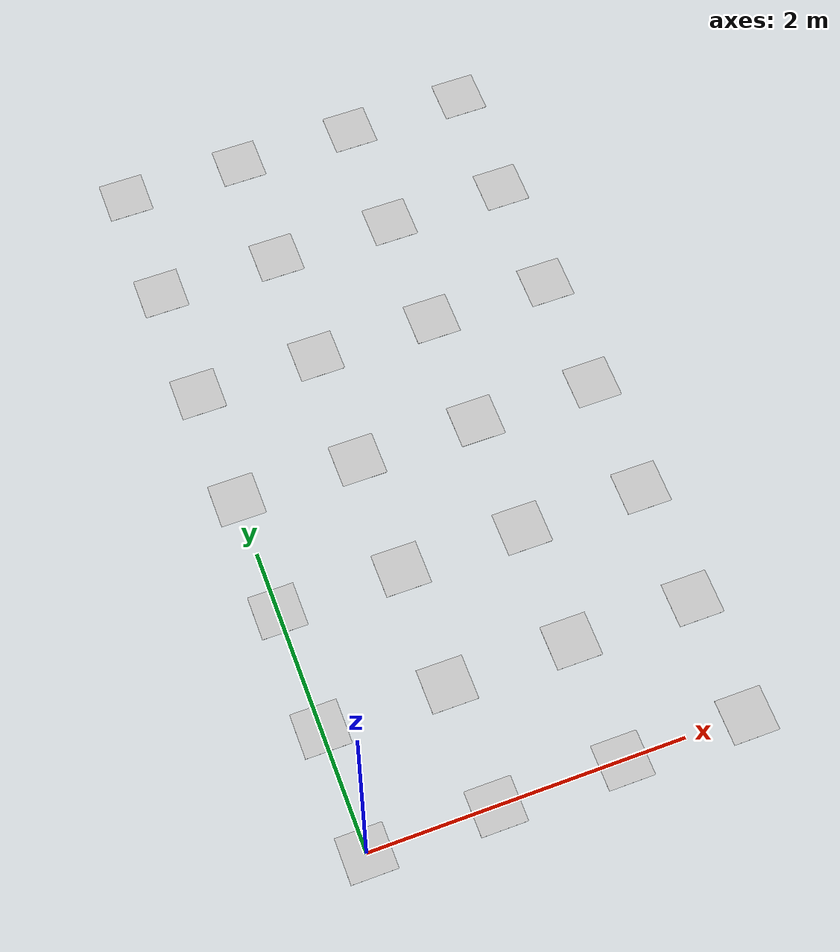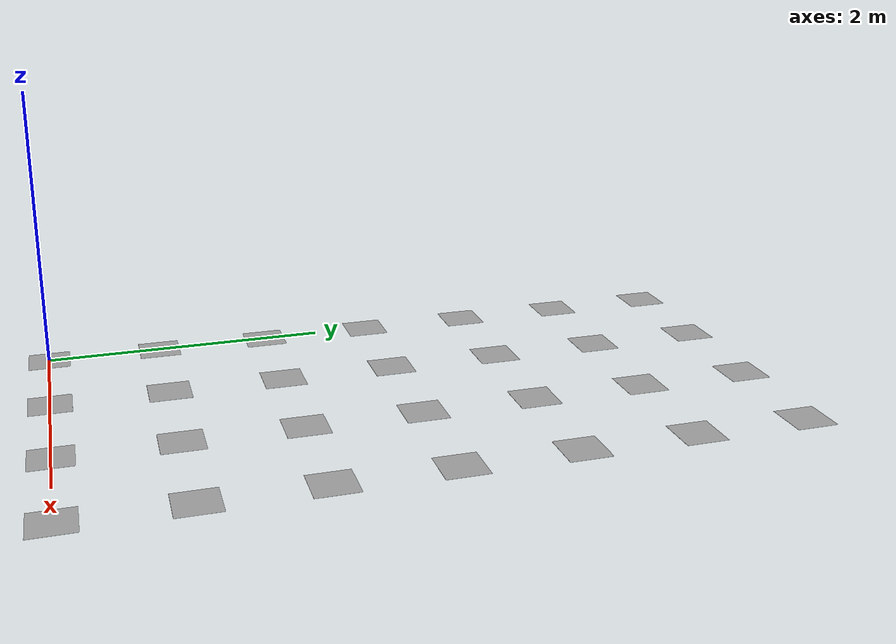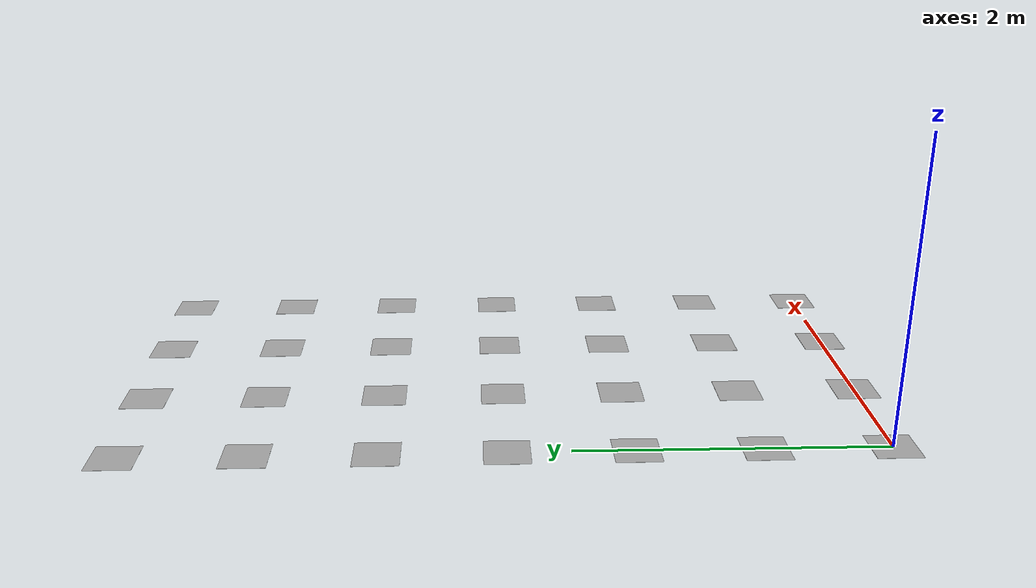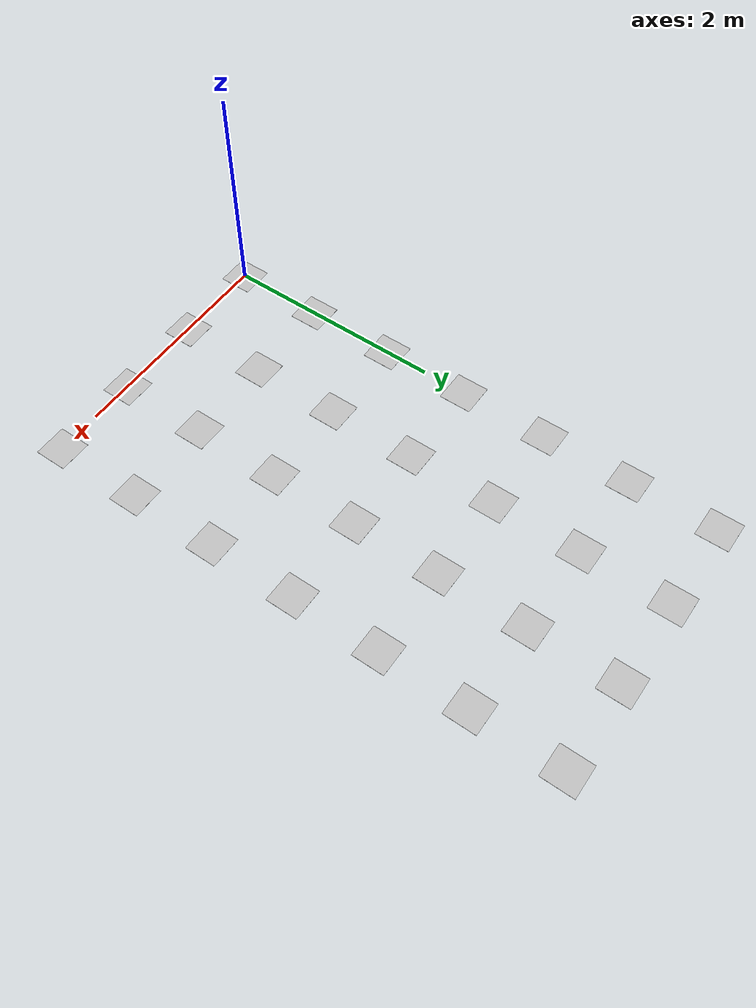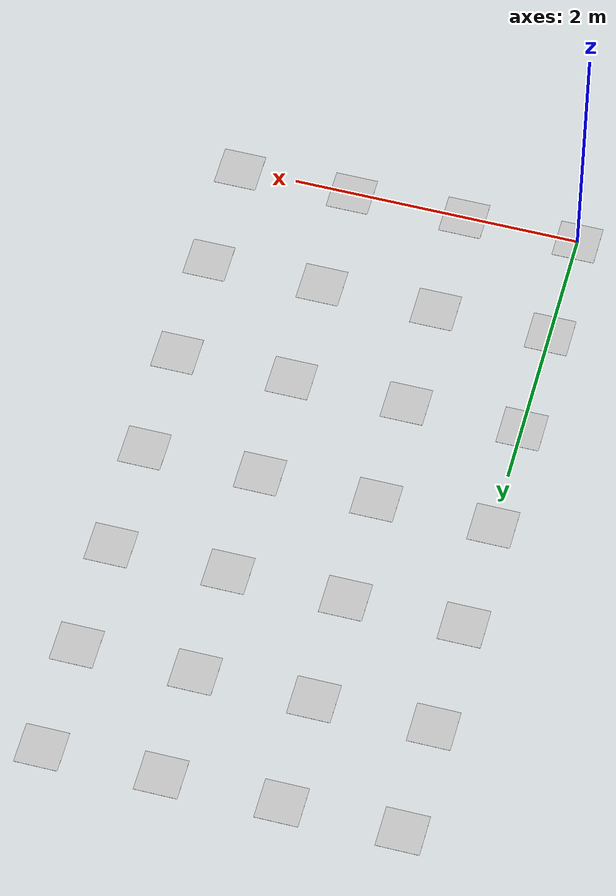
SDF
<sdf version="1.5">
 <world name="default">
  <include><uri>model://aruco_aruco_map_txt</uri></include>
  <include><uri>model://sun</uri></include>
  <scene>
   <ambient>0.8 0.8 0.8 1</ambient>
   <background>0.8 0.9 1 1</background>
   <shadows>false</shadows>
   <grid>false</grid>
   <origin_visual>false</origin_visual>
  </scene>
  <physics name="default_physics" default="0" type="ode">
   <gravity>0 0 -9.8066</gravity>
   <ode>
    <solver>
     <type>quick</type>
     <iters>10</iters>
     <sor>1.3</sor>
     <use_dynamic_moi_rescaling>0</use_dynamic_moi_rescaling>
    </solver>
    <constraints>
     <cfm>0</cfm>
     <erp>0.2</erp>
     <contact_max_correcting_vel>100</contact_max_correcting_vel>
     <contact_surface_layer>0.001</contact_surface_layer>
    </constraints>
   </ode>
   <max_step_size>0.004</max_step_size>
   <real_time_factor>1</real_time_factor>
   <real_time_update_rate>250</real_time_update_rate>
   <magnetic_field>6.0e-6 2.3e-5 -4.2e-5</magnetic_field>
  </physics>
 </world>
</sdf>

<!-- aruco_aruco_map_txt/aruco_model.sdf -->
<sdf version="1.5">
    <model name="aruco_2_28">
        <static>true</static>
        <link name="aruco_2_28_link">

<visual name="visual_marker_2_0">
    <pose>0.0 4.8 0.0 0.0 0.0 1.57079632679</pose>
    <cast_shadows>false</cast_shadows>
    <geometry>
        <box>
            <size>0.293333333333 0.293333333333 1e-3</size>
        </box>
    </geometry>
    <material>
        <script>
            <uri>model://aruco_aruco_map_txt/materials/scripts</uri>
            <uri>model://aruco_aruco_map_txt/materials/textures</uri>
            <name>aruco/marker_2_0</name>
        </script>
    </material>
</visual>

<visual name="visual_marker_2_1">
    <pose>0.8 4.8 0.0 0.0 0.0 1.57079632679</pose>
    <cast_shadows>false</cast_shadows>
    <geometry>
        <box>
            <size>0.293333333333 0.293333333333 1e-3</size>
        </box>
    </geometry>
    <material>
        <script>
            <uri>model://aruco_aruco_map_txt/materials/scripts</uri>
            <uri>model://aruco_aruco_map_txt/materials/textures</uri>
            <name>aruco/marker_2_1</name>
        </script>
    </material>
</visual>

<visual name="visual_marker_2_2">
    <pose>1.6 4.8 0.0 0.0 0.0 1.57079632679</pose>
    <cast_shadows>false</cast_shadows>
    <geometry>
        <box>
            <size>0.293333333333 0.293333333333 1e-3</size>
        </box>
    </geometry>
    <material>
        <script>
            <uri>model://aruco_aruco_map_txt/materials/scripts</uri>
            <uri>model://aruco_aruco_map_txt/materials/textures</uri>
            <name>aruco/marker_2_2</name>
        </script>
    </material>
</visual>

<visual name="visual_marker_2_3">
    <pose>2.4 4.8 0.0 0.0 0.0 1.57079632679</pose>
    <cast_shadows>false</cast_shadows>
    <geometry>
        <box>
            <size>0.293333333333 0.293333333333 1e-3</size>
        </box>
    </geometry>
    <material>
        <script>
            <uri>model://aruco_aruco_map_txt/materials/scripts</uri>
            <uri>model://aruco_aruco_map_txt/materials/textures</uri>
            <name>aruco/marker_2_3</name>
        </script>
    </material>
</visual>

<visual name="visual_marker_2_4">
    <pose>0.0 4.0 0.0 0.0 0.0 1.57079632679</pose>
    <cast_shadows>false</cast_shadows>
    <geometry>
        <box>
            <size>0.293333333333 0.293333333333 1e-3</size>
        </box>
    </geometry>
    <material>
        <script>
            <uri>model://aruco_aruco_map_txt/materials/scripts</uri>
            <uri>model://aruco_aruco_map_txt/materials/textures</uri>
            <name>aruco/marker_2_4</name>
        </script>
    </material>
</visual>

<visual name="visual_marker_2_5">
    <pose>0.8 4.0 0.0 0.0 0.0 1.57079632679</pose>
    <cast_shadows>false</cast_shadows>
    <geometry>
        <box>
            <size>0.293333333333 0.293333333333 1e-3</size>
        </box>
    </geometry>
    <material>
        <script>
            <uri>model://aruco_aruco_map_txt/materials/scripts</uri>
            <uri>model://aruco_aruco_map_txt/materials/textures</uri>
            <name>aruco/marker_2_5</name>
        </script>
    </material>
</visual>

<visual name="visual_marker_2_6">
    <pose>1.6 4.0 0.0 0.0 0.0 1.57079632679</pose>
    <cast_shadows>false</cast_shadows>
    <geometry>
        <box>
            <size>0.293333333333 0.293333333333 1e-3</size>
        </box>
    </geometry>
    <material>
        <script>
            <uri>model://aruco_aruco_map_txt/materials/scripts</uri>
            <uri>model://aruco_aruco_map_txt/materials/textures</uri>
            <name>aruco/marker_2_6</name>
        </script>
    </material>
</visual>

<visual name="visual_marker_2_7">
    <pose>2.4 4.0 0.0 0.0 0.0 1.57079632679</pose>
    <cast_shadows>false</cast_shadows>
    <geometry>
        <box>
            <size>0.293333333333 0.293333333333 1e-3</size>
        </box>
    </geometry>
    <material>
        <script>
            <uri>model://aruco_aruco_map_txt/materials/scripts</uri>
            <uri>model://aruco_aruco_map_txt/materials/textures</uri>
            <name>aruco/marker_2_7</name>
        </script>
    </material>
</visual>

<visual name="visual_marker_2_8">
    <pose>0.0 3.2 0.0 0.0 0.0 1.57079632679</pose>
    <cast_shadows>false</cast_shadows>
    <geometry>
        <box>
            <size>0.293333333333 0.293333333333 1e-3</size>
        </box>
    </geometry>
    <material>
        <script>
            <uri>model://aruco_aruco_map_txt/materials/scripts</uri>
            <uri>model://aruco_aruco_map_txt/materials/textures</uri>
            <name>aruco/marker_2_8</name>
        </script>
    </material>
</visual>

<visual name="visual_marker_2_9">
    <pose>0.8 3.2 0.0 0.0 0.0 1.57079632679</pose>
    <cast_shadows>false</cast_shadows>
    <geometry>
        <box>
            <size>0.293333333333 0.293333333333 1e-3</size>
        </box>
    </geometry>
    <material>
        <script>
            <uri>model://aruco_aruco_map_txt/materials/scripts</uri>
            <uri>model://aruco_aruco_map_txt/materials/textures</uri>
            <name>aruco/marker_2_9</name>
        </script>
    </material>
</visual>

<visual name="visual_marker_2_10">
    <pose>1.6 3.2 0.0 0.0 0.0 1.57079632679</pose>
    <cast_shadows>false</cast_shadows>
    <geometry>
        <box>
            <size>0.293333333333 0.293333333333 1e-3</size>
        </box>
    </geometry>
    <material>
        <script>
            <uri>model://aruco_aruco_map_txt/materials/scripts</uri>
            <uri>model://aruco_aruco_map_txt/materials/textures</uri>
            <name>aruco/marker_2_10</name>
        </script>
    </material>
</visual>

<visual name="visual_marker_2_11">
    <pose>2.4 3.2 0.0 0.0 0.0 1.57079632679</pose>
    <cast_shadows>false</cast_shadows>
    <geometry>
        <box>
            <size>0.293333333333 0.293333333333 1e-3</size>
        </box>
    </geometry>
    <material>
        <script>
            <uri>model://aruco_aruco_map_txt/materials/scripts</uri>
            <uri>model://aruco_aruco_map_txt/materials/textures</uri>
            <name>aruco/marker_2_11</name>
        </script>
    </material>
</visual>

<visual name="visual_marker_2_12">
    <pose>0.0 2.4 0.0 0.0 0.0 1.57079632679</pose>
    <cast_shadows>false</cast_shadows>
    <geometry>
        <box>
            <size>0.293333333333 0.293333333333 1e-3</size>
        </box>
    </geometry>
    <material>
        <script>
            <uri>model://aruco_aruco_map_txt/materials/scripts</uri>
            <uri>model://aruco_aruco_map_txt/materials/textures</uri>
            <name>aruco/marker_2_12</name>
        </script>
    </material>
</visual>

<visual name="visual_marker_2_13">
    <pose>0.8 2.4 0.0 0.0 0.0 1.57079632679</pose>
    <cast_shadows>false</cast_shadows>
    <geometry>
        <box>
            <size>0.293333333333 0.293333333333 1e-3</size>
        </box>
    </geometry>
    <material>
        <script>
            <uri>model://aruco_aruco_map_txt/materials/scripts</uri>
            <uri>model://aruco_aruco_map_txt/materials/textures</uri>
            <name>aruco/marker_2_13</name>
        </script>
    </material>
</visual>

<visual name="visual_marker_2_14">
    <pose>1.6 2.4 0.0 0.0 0.0 1.57079632679</pose>
    <cast_shadows>false</cast_shadows>
    <geometry>
        <box>
            <size>0.293333333333 0.293333333333 1e-3</size>
        </box>
    </geometry>
    <material>
        <script>
            <uri>model://aruco_aruco_map_txt/materials/scripts</uri>
            <uri>model://aruco_aruco_map_txt/materials/textures</uri>
            <name>aruco/marker_2_14</name>
        </script>
    </material>
</visual>

<visual name="visual_marker_2_15">
    <pose>2.4 2.4 0.0 0.0 0.0 1.57079632679</pose>
    <cast_shadows>false</cast_shadows>
    <geometry>
        <box>
            <size>0.293333333333 0.293333333333 1e-3</size>
        </box>
    </geometry>
    <material>
        <script>
            <uri>model://aruco_aruco_map_txt/materials/scripts</uri>
            <uri>model://aruco_aruco_map_txt/materials/textures</uri>
            <name>aruco/marker_2_15</name>
        </script>
    </material>
</visual>

<visual name="visual_marker_2_16">
    <pose>0.0 1.6 0.0 0.0 0.0 1.57079632679</pose>
    <cast_shadows>false</cast_shadows>
    <geometry>
        <box>
            <size>0.293333333333 0.293333333333 1e-3</size>
        </box>
    </geometry>
    <material>
        <script>
            <uri>model://aruco_aruco_map_txt/materials/scripts</uri>
            <uri>model://aruco_aruco_map_txt/materials/textures</uri>
            <name>aruco/marker_2_16</name>
        </script>
    </material>
</visual>

<visual name="visual_marker_2_17">
    <pose>0.8 1.6 0.0 0.0 0.0 1.57079632679</pose>
    <cast_shadows>false</cast_shadows>
    <geometry>
        <box>
            <size>0.293333333333 0.293333333333 1e-3</size>
        </box>
    </geometry>
    <material>
        <script>
            <uri>model://aruco_aruco_map_txt/materials/scripts</uri>
            <uri>model://aruco_aruco_map_txt/materials/textures</uri>
            <name>aruco/marker_2_17</name>
        </script>
    </material>
</visual>

<visual name="visual_marker_2_18">
    <pose>1.6 1.6 0.0 0.0 0.0 1.57079632679</pose>
    <cast_shadows>false</cast_shadows>
    <geometry>
        <box>
            <size>0.293333333333 0.293333333333 1e-3</size>
        </box>
    </geometry>
    <material>
        <script>
            <uri>model://aruco_aruco_map_txt/materials/scripts</uri>
            <uri>model://aruco_aruco_map_txt/materials/textures</uri>
            <name>aruco/marker_2_18</name>
        </script>
    </material>
</visual>

<visual name="visual_marker_2_19">
    <pose>2.4 1.6 0.0 0.0 0.0 1.57079632679</pose>
    <cast_shadows>false</cast_shadows>
    <geometry>
        <box>
            <size>0.293333333333 0.293333333333 1e-3</size>
        </box>
    </geometry>
    <material>
        <script>
            <uri>model://aruco_aruco_map_txt/materials/scripts</uri>
            <uri>model://aruco_aruco_map_txt/materials/textures</uri>
            <name>aruco/marker_2_19</name>
        </script>
    </material>
</visual>

<visual name="visual_marker_2_20">
    <pose>0.0 0.8 0.0 0.0 0.0 1.57079632679</pose>
    <cast_shadows>false</cast_shadows>
    <geometry>
        <box>
            <size>0.293333333333 0.293333333333 1e-3</size>
        </box>
    </geometry>
    <material>
        <script>
            <uri>model://aruco_aruco_map_txt/materials/scripts</uri>
            <uri>model://aruco_aruco_map_txt/materials/textures</uri>
            <name>aruco/marker_2_20</name>
        </script>
    </material>
</visual>

<visual name="visual_marker_2_21">
    <pose>0.8 0.8 0.0 0.0 0.0 1.57079632679</pose>
    <cast_shadows>false</cast_shadows>
    <geometry>
        <box>
            <size>0.293333333333 0.293333333333 1e-3</size>
        </box>
    </geometry>
    <material>
        <script>
            <uri>model://aruco_aruco_map_txt/materials/scripts</uri>
            <uri>model://aruco_aruco_map_txt/materials/textures</uri>
            <name>aruco/marker_2_21</name>
        </script>
    </material>
</visual>

<visual name="visual_marker_2_22">
    <pose>1.6 0.8 0.0 0.0 0.0 1.57079632679</pose>
    <cast_shadows>false</cast_shadows>
    <geometry>
        <box>
            <size>0.293333333333 0.293333333333 1e-3</size>
        </box>
    </geometry>
    <material>
        <script>
            <uri>model://aruco_aruco_map_txt/materials/scripts</uri>
            <uri>model://aruco_aruco_map_txt/materials/textures</uri>
            <name>aruco/marker_2_22</name>
        </script>
    </material>
</visual>

<visual name="visual_marker_2_23">
    <pose>2.4 0.8 0.0 0.0 0.0 1.57079632679</pose>
    <cast_shadows>false</cast_shadows>
    <geometry>
        <box>
            <size>0.293333333333 0.293333333333 1e-3</size>
        </box>
    </geometry>
    <material>
        <script>
            <uri>model://aruco_aruco_map_txt/materials/scripts</uri>
            <uri>model://aruco_aruco_map_txt/materials/textures</uri>
            <name>aruco/marker_2_23</name>
        </script>
    </material>
</visual>

<visual name="visual_marker_2_24">
    <pose>0.0 0.0 0.0 0.0 0.0 1.57079632679</pose>
    <cast_shadows>false</cast_shadows>
    <geometry>
        <box>
            <size>0.293333333333 0.293333333333 1e-3</size>
        </box>
    </geometry>
    <material>
        <script>
            <uri>model://aruco_aruco_map_txt/materials/scripts</uri>
            <uri>model://aruco_aruco_map_txt/materials/textures</uri>
            <name>aruco/marker_2_24</name>
        </script>
    </material>
</visual>

<visual name="visual_marker_2_25">
    <pose>0.8 0.0 0.0 0.0 0.0 1.57079632679</pose>
    <cast_shadows>false</cast_shadows>
    <geometry>
        <box>
            <size>0.293333333333 0.293333333333 1e-3</size>
        </box>
    </geometry>
    <material>
        <script>
            <uri>model://aruco_aruco_map_txt/materials/scripts</uri>
            <uri>model://aruco_aruco_map_txt/materials/textures</uri>
            <name>aruco/marker_2_25</name>
        </script>
    </material>
</visual>

<visual name="visual_marker_2_26">
    <pose>1.6 0.0 0.0 0.0 0.0 1.57079632679</pose>
    <cast_shadows>false</cast_shadows>
    <geometry>
        <box>
            <size>0.293333333333 0.293333333333 1e-3</size>
        </box>
    </geometry>
    <material>
        <script>
            <uri>model://aruco_aruco_map_txt/materials/scripts</uri>
            <uri>model://aruco_aruco_map_txt/materials/textures</uri>
            <name>aruco/marker_2_26</name>
        </script>
    </material>
</visual>

<visual name="visual_marker_2_27">
    <pose>2.4 0.0 0.0 0.0 0.0 1.57079632679</pose>
    <cast_shadows>false</cast_shadows>
    <geometry>
        <box>
            <size>0.293333333333 0.293333333333 1e-3</size>
        </box>
    </geometry>
    <material>
        <script>
            <uri>model://aruco_aruco_map_txt/materials/scripts</uri>
            <uri>model://aruco_aruco_map_txt/materials/textures</uri>
            <name>aruco/marker_2_27</name>
        </script>
    </material>
</visual>

        </link>
    </model>
</sdf>
